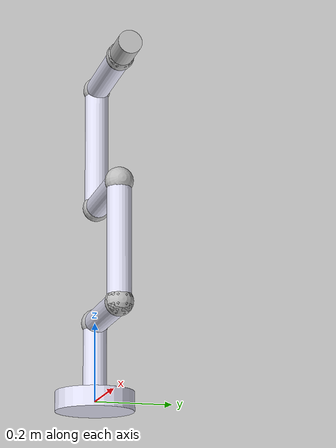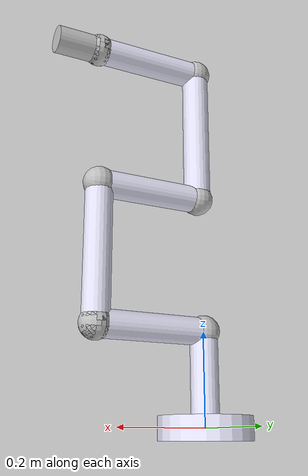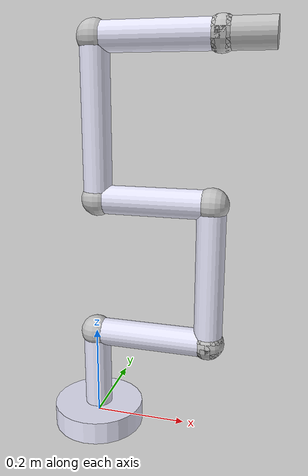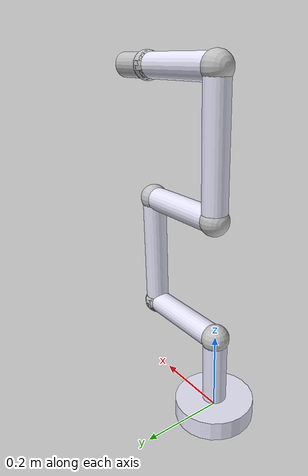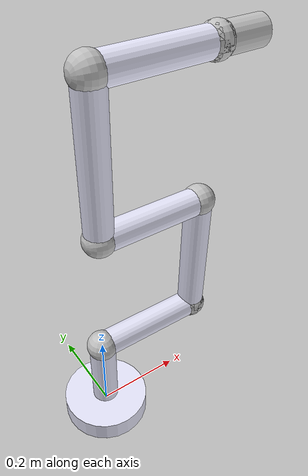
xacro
<?xml version="1.0"?>
<robot name="fusybots_six_dof_spherical_wrist" xmlns:xacro="http://www.ros.org/wiki/xacro" xmlns:ros2_control="http://www.ros.org/wiki/ros2_control">

<!-- Define gray color -->
  <material name="gray">
   <color rgba="0.75 0.75 0.75 1.0"/>
  </material>

<!-- Define silver color -->
<material name="silver">
    <color rgba="0.9 0.9 0.98 1.0"/>
</material>

<!-- Fixed Link -->
<link name="base_link"></link>

<!-- Fixed Joint -->
<joint name="j0" type="fixed">
    <origin xyz="0.0 0.0 0.0" rpy="0.0 0.0 0.0"/>
    <parent link="base_link"/>
    <child link="l0"/>
    <axis xyz="0.0 0.0 0.0"/>
    <limit lower="0.0" upper="0.0" effort="0.0" velocity="0.0"/>
</joint>

<link name="l0">
    <inertial>
			<origin xyz="0.0 0.0 25e-03" rpy="0 0 0"/>
			<mass value="2e+00"/>
			<inertia
				ixx="9.3895308e-03" ixy="0.0" ixz="1.1882474e-03"
				iyx="0.0" iyy="1.4207390e-02" iyz="9.2874266e-06"
				izx="1.1882474e-04"  izy="9.2874266e-06"  izz="1.7661948e-02"/>
	</inertial>
    <visual>
        <geometry>
            <cylinder radius="0.1" length="0.05"/>
        </geometry>
        <origin xyz="0.0 0.0 0.0" rpy="0.0 0.0 0.0"/>
        <material name="silver"/>
    </visual>
</link>

<joint name="j1" type="revolute">
    <origin xyz="0.0 0.0 0.0" rpy="0.0 0.0 0.0"/>
    <parent link="l0"/>
    <child link="l1"/>
    <axis xyz="0.0 0.0 1.0"/>
    <limit lower="-${2*pi}" upper="${2*pi}" effort="0.0" velocity="0.0"/>
</joint>

<link name="l1">
     <inertial>
			<origin xyz="0.0 0.0 +0.25" rpy="0 0 0"/>
			<mass value="1e+00"/>
			<inertia
            ixx="1.3778118e-01" ixy="5.1395441e-06" ixz="2.1163457e-04"
            iyx="5.1395441e-06" iyy="1.3826689e-01" iyz="1.1751288e-02"
            izx="2.1163457e-04" izy="1.1751288e-02" izz="3.5020186e-02"/>
	</inertial>
    <visual>
        <geometry>
            <cylinder radius="0.03" length="0.2"/>
        </geometry>
        <origin xyz="0.0 0.0 0.1" rpy="0.0 0.0 0.0"/>
        <material name="silver"/>
    </visual>
    <!-- Add a sphere to create a curved joint -->
    <visual>
      <geometry>
        <sphere radius="0.035"/>
      </geometry>
      <origin xyz="0.0 0.0 0.2" rpy="0.0 0.0 0.0"/>
      <material name="gray"/>
    </visual>
</link>

<!-- Dummy Joint -->
<joint name="j_dummy_1_2" type="fixed">
    <origin xyz="0.0 0.0 0.2" rpy="0.0 0.0 0.0"/>
    <parent link="l1"/>
    <child link="l2"/>
</joint>

<link name="l2">
     <inertial>
			<origin xyz="0.25 0.0 0.0" rpy="0 0 0"/>
			<mass value="1e+00"/>
			<inertia
				ixx="3.0406895e-01" ixy="5.6383979e-04" ixz="4.4113010e-01"
				iyx="5.6383979e-04" iyy="1.9934350e+00" iyz="1.2111129e-06"
				izx="4.4113010e-01" izy="1.2111129e-06" izz="1.7471456e+00"/>
	</inertial>
    <visual>
        <geometry>
            <cylinder radius="0.03" length="0.25"/>
        </geometry>
        <origin xyz="0.125 0.0 0.0" rpy="0.0 ${pi/2} 0.0"/>
        <material name="silver"/>
    </visual>
    <!-- Add a sphere to create a curved joint -->
    <visual>
      <geometry>
        <sphere radius="0.035"/>
      </geometry>
      <origin xyz="0.25 0.0 0.0" rpy="0.0 0.0 0.0"/>
      <material name="gray"/>
    </visual>
</link>

<joint name="j2" type="revolute">
    <origin xyz="0.25 0.0 0.0" rpy="0.0 ${pi/2} 0.0"/>
    <parent link="l2"/>
    <child link="l3"/>
    <axis xyz="0.0 0.0 1.0"/>
    <limit lower="${-pi/2}" upper="${pi/2}" effort="0.0" velocity="0.0"/>
</joint>

<link name="l3">
     <inertial>
			<origin xyz="-0.15 0.0 0.0" rpy="0 0 0"/>
			<mass value="3e+00"/>
			<inertia
				ixx="3.1982320e-02" ixy="-1.5528529e-05" ixz="-4.8994800e-05"
				iyx="-1.5528529e-05" iyy="2.8261283e-02" iyz="7.1406845e-03"
				izx="-4.8994800e-05" izy="7.1406845e-03" izz="8.8063347e-03"/>
	</inertial>
    <visual>
        <geometry>
            <cylinder radius="0.03" length="0.3"/>
        </geometry>
        <origin xyz="-0.15 0.0 0.0 " rpy="0.0  ${pi/2} 0.0"/>
        <material name="silver"/>
    </visual>
    <!-- Add a sphere to create a curved joint -->
    <visual>
      <geometry>
        <sphere radius="0.035"/>
      </geometry>
      <origin xyz="0.0 0.0 0.0" rpy="0.0 0.0 0.0"/>
      <material name="gray"/>
    </visual>
</link>

<joint name="j3" type="revolute">
    <origin xyz="-0.30 0.0 0.0" rpy="0.0 0.0 0.0"/>
    <parent link="l3"/>
    <child link="l4"/>
    <axis xyz="0.0 0.0 1.0"/>
    <limit lower="${-pi/2}" upper="${pi/2}" effort="0.0" velocity="0.0"/>
</joint>

<link name="l4">
     <inertial>
			<origin xyz="0.0 0.0 -0.12" rpy="0 0 0"/>
			<mass value="1e+00"/>
			<inertia
				ixx="3.0406895e-01" ixy="5.6383979e-04" ixz="4.4113010e-01"
				iyx="5.6383979e-04" iyy="1.9934350e+00" iyz="1.2111129e-06"
				izx="4.4113010e-01" izy="1.2111129e-06" izz="1.7471456e+00"/>
	</inertial>
    <visual>
        <geometry>
            <cylinder radius="0.03" length="0.24"/>
        </geometry>
        <origin xyz="0.0 0.0 -0.12" rpy="0.0 0.0 0.0"/>
        <material name="silver"/>
    </visual>
    <!-- Add a sphere to create a curved joint -->
    <visual>
      <geometry>
        <sphere radius="0.035"/>
      </geometry>
      <origin xyz="0.0 0.0 0.0" rpy="0.0 0.0 0.0"/>
      <material name="gray"/>
    </visual>
</link>

<!-- Dummy Joint -->
<joint name="j_dummy" type="fixed">
    <origin xyz="0.0 0.0 -0.24" rpy="0.0 0.0 0.0"/>
    <parent link="l4"/>
    <child link="l5"/>
</joint>

<link name="l5">
     <inertial>
			<origin xyz="-0.16 0.0 0.0" rpy="0.0 0.0 0.0"/>
			<mass value="3e+00"/>
			<inertia
				ixx="1.3754675e-02" ixy="-1.5528630e-05" ixz="-2.8051809e-05"
				iyx="-1.5528630e-05" iyy="9.9916676e-03" iyz="3.9023300e-03"
				izx="-2.8051809e-05" izy="3.9023300e-03" izz="7.6137437e-03"/>
	</inertial>
    <visual>
        <geometry>
            <cylinder radius="0.03" length="0.32"/>
        </geometry>
        <origin xyz="-0.16 0.0 0.0 " rpy="0.0 ${pi/2} 0.0"/>
        <material name="silver"/>
    </visual>
    <!-- Add a sphere to create a curved joint -->
    <visual>
      <geometry>
        <sphere radius="0.035"/>
      </geometry>
      <origin xyz="0.0 0.0 0.0" rpy="0.0 0.0 0.0"/>
      <material name="gray"/>
    </visual>
</link>

<joint name="j4" type="revolute">
    <origin xyz="-0.32 0.0 0.0" rpy="0.0 0.0 0.0"/>
    <parent link="l5"/>
    <child link="l6"/>
    <axis xyz="0.0 0.0 1.0"/>
    <limit lower="${-pi/2}" upper="${pi/2}" effort="0.0" velocity="0.0"/>
</joint>

<link name="l6">
     <inertial>
			 <origin xyz="0.0 0.0 0.125" rpy="0.0 0.0 0.0"/>
			<mass value="1e+00"/>
			<inertia
				ixx="9.3016047e-04" ixy="-2.9405026e-07" ixz="1.0421409e-05"
				iyx="-2.9405026e-07" iyy="9.5021553e-04" iyz="-1.7371494e-06"
				izx="1.0421409e-05" izy="-1.7371494e-06" izz="8.4567154e-04"/>
	</inertial>
    <visual>
        <geometry>
            <cylinder radius="0.03" length="0.25"/>
        </geometry>
        <origin xyz="0.0 0.0 0.125" rpy="0.0 0.0 0.0"/>
        <material name="silver"/>
    </visual>
    <!-- Add a sphere to create a curved joint -->
    <visual>
      <geometry>
        <sphere radius="0.035"/>
      </geometry>
      <origin xyz="0.0 0.0 0.0" rpy="0.0 0.0 0.0"/>
      <material name="gray"/>
    </visual>
</link>

<joint name="j5" type="revolute">
    <origin xyz="0.0 0.0 0.25" rpy="0.0 ${-pi/2} ${2*pi}"/>
    <parent link="l6"/>
    <child link="le"/>
    <axis xyz="0.0 0.0 1.0"/>
    <limit lower="${-pi}" upper="${pi}" effort="0.0" velocity="0.0"/>
</joint>

<link name="le">
     <inertial>
			 <origin xyz="0.0 0.0 0.0" rpy="0.0 0.0 0.0"/>
			<mass value="1e+00"/>
			<inertia
				ixx="9.3016047e-04" ixy="-2.9405026e-07" ixz="1.0421409e-05"
				iyx="-2.9405026e-07" iyy="9.5021553e-04" iyz="-1.7371494e-06"
				izx="1.0421409e-05" izy="-1.7371494e-06" izz="8.4567154e-04"/>
	</inertial>
    <!-- Add a sphere to create a curved joint -->
    <visual>
      <geometry>
        <sphere radius="0.035"/>
      </geometry>
      <origin xyz="0.0 0.0 0.0" rpy="0.0 0.0 0.0"/>
      <material name="gray"/>
    </visual>
</link>

<joint name="j6" type="revolute">
    <origin xyz="0.0 0.0 0.0" rpy="0.0 ${pi/2} 0.0"/>
    <parent link="le"/>
    <child link="le_1"/>
    <axis xyz="0.0 0.0 1.0"/>
    <limit lower="-${2*pi}" upper="${2*pi}" effort="0.0" velocity="0.0"/>
</joint>

<link name="le_1">
     <inertial>
			 <origin xyz="0.0 0.0 0.05" rpy="0.0 0.0 0.0"/>
			<mass value="1e+00"/>
			<inertia
				ixx="9.3016047e-04" ixy="-2.9405026e-07" ixz="1.0421409e-05"
				iyx="-2.9405026e-07" iyy="9.5021553e-04" iyz="-1.7371494e-06"
				izx="1.0421409e-05" izy="-1.7371494e-06" izz="8.4567154e-04"/>
	</inertial>
    <visual>
        <geometry>
            <cylinder radius="0.03" length="0.1"/>
        </geometry>
        <origin xyz="0.0 0.0 0.05 " rpy="0.0 0.0 0.0"/>
        <material name="gray"/>
    </visual>
    <!-- Add a sphere to create a curved joint -->
    <visual>
      <geometry>
        <sphere radius="0.035"/>
      </geometry>
      <origin xyz="0.0 0.0 0.0" rpy="0.0 0.0 0.0"/>
      <material name="gray"/>
    </visual>
</link>

<!-- Virtual end-effector link at the physical tip of le_1, for accurate KDL FK/IK -->
<joint name="j_ee" type="fixed">
    <origin xyz="0.0 0.0 0.1" rpy="0.0 0.0 0.0"/>
    <parent link="le_1"/>
    <child link="ee_link"/>
</joint>

<link name="ee_link"></link>
</robot>
